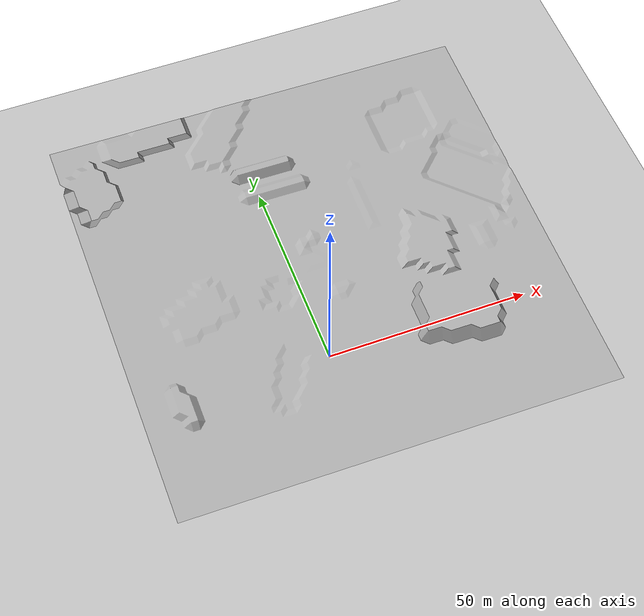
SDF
<sdf version="1.6">
 <world name="default">
  <light name="sun" type="directional">
   <pose>0 0 10 0 -0 0</pose>
   <diffuse>0.8 0.8 0.8 1</diffuse>
   <specular>0.2 0.2 0.2 1</specular>
   <attenuation>
    <range>1000</range>
    <constant>0.9</constant>
    <linear>0.01</linear>
    <quadratic>0.001</quadratic>
   </attenuation>
   <direction>-0.5 0.1 -0.9</direction>
  </light>
  <model name="ground_plane">
   <static>1</static>
   <link name="link">
    <collision name="collision">
     <geometry><plane><normal>0 0 1</normal><size>100 100</size></plane></geometry>
     <surface>
      <contact><collide_bitmask>65535</collide_bitmask></contact>
      <friction><ode><mu>100</mu><mu2>50</mu2></ode></friction>
     </surface>
    </collision>
    <visual name="visual">
     <cast_shadows>0</cast_shadows>
     <geometry><plane><normal>0 0 1</normal><size>100 100</size></plane></geometry>
     <material>
      <script><uri>file://media/materials/scripts/gazebo.material</uri><name>Gazebo/Grey</name></script>
     </material>
    </visual>
   </link>
  </model>
  <gravity>0 0 -9.8</gravity>
  <magnetic_field>6e-06 2.3e-05 -4.2e-05</magnetic_field>
  <atmosphere type="adiabatic"/>
  <physics name="default_physics" default="0" type="ode">
   <max_step_size>0.001</max_step_size>
   <real_time_factor>1</real_time_factor>
   <real_time_update_rate>1000</real_time_update_rate>
  </physics>
  <scene><ambient>0.4 0.4 0.4 1</ambient><background>0.7 0.7 0.7 1</background><shadows>1</shadows></scene>
  <audio><device>default</device></audio>
  <spherical_coordinates>
   <surface_model>EARTH_WGS84</surface_model>
   <latitude_deg>0</latitude_deg>
   <longitude_deg>0</longitude_deg>
   <elevation>0</elevation>
   <heading_deg>0</heading_deg>
  </spherical_coordinates>
  <model name="robot">
   <link name="011_banana_link">
    <inertial>
     <mass>0.411</mass>
     <inertia><ixx>1</ixx><ixy>0</ixy><ixz>0</ixz><iyy>1</iyy><iyz>0</iyz><izz>1</izz></inertia>
    </inertial>
    <collision name="011_banana_link_collision">
     <geometry>
      <mesh>
       <scale>1 1 1</scale>
       <uri>/home/zeeshan/learn_ws/src/ycb_benchmarks/models/desert/meshes/desert.dae</uri>
      </mesh>
     </geometry>
    </collision>
    <visual name="011_banana_link_visual">
     <geometry>
      <mesh>
       <scale>1 1 1</scale>
       <uri>/home/zeeshan/learn_ws/src/ycb_benchmarks/models/desert/meshes/desert.dae</uri>
      </mesh>
     </geometry>
    </visual>
   </link>
   <pose>1.42381 7.28499 28.6742 0.012348 0.007527 -0.00491</pose>
  </model>
 </world>
</sdf>
